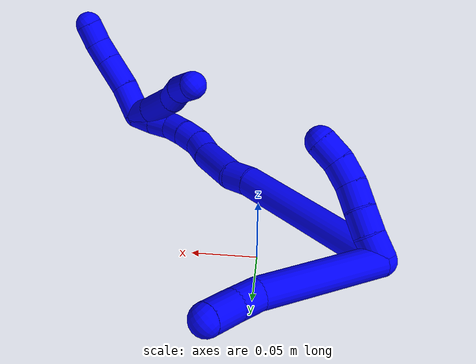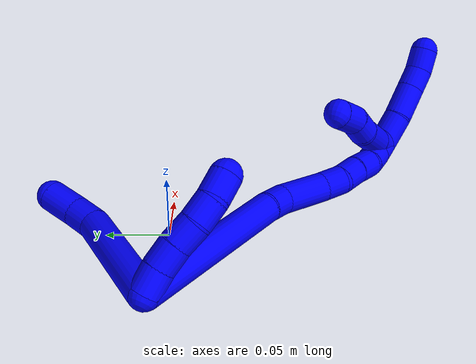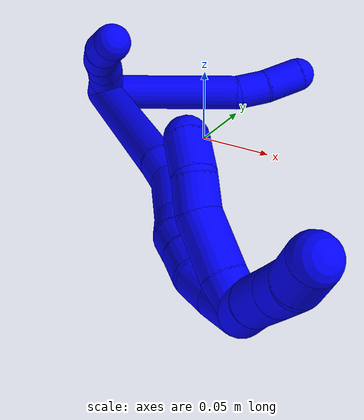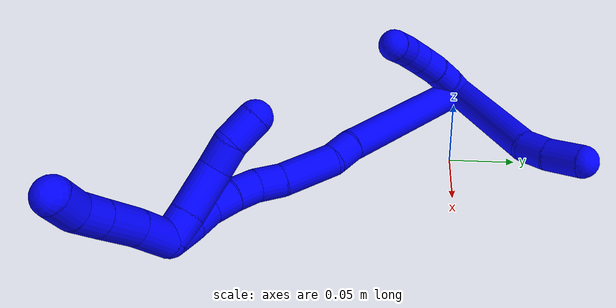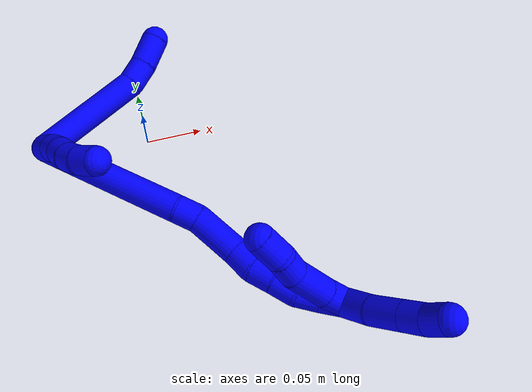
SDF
<sdf version="1.7">
 <world name="default">
  <model name="1">
   <static>0</static>
   <link name="1">
    <collision name="collision-cylinder-e_1_2_8">
     <pose>0.033146 0.030264 0.021653 -0.94977 0.727669 -0.386655</pose>
     <geometry><cylinder><radius>0.0125</radius><length>0.099669</length></cylinder></geometry>
     <surface>
      <friction><ode><mu>1.16</mu><mu2>1.16</mu2><slip1>0</slip1><slip2>0</slip2></ode></friction>
      <contact><ode><kp>1e+06</kp><kd>1</kd><max_vel>0</max_vel><min_depth>0.001</min_depth></ode></contact>
     </surface>
    </collision>
    <visual name="visual-cylinder-e_1_2_8">
     <pose>0.033146 0.030264 0.021653 -0.94977 0.727669 -0.386655</pose>
     <geometry><cylinder><radius>0.0125</radius><length>0.099669</length></cylinder></geometry>
     <material><ambient>0 0 1 1</ambient></material>
    </visual>
    <collision name="collision-cylinder-e_2_8_9">
     <pose>0.071846 0.069664 0.046165 -1.26752 0.52565 -0.390408</pose>
     <geometry><cylinder><radius>0.0125</radius><length>0.022133</length></cylinder></geometry>
     <surface>
      <friction><ode><mu>1.16</mu><mu2>1.16</mu2><slip1>0</slip1><slip2>0</slip2></ode></friction>
      <contact><ode><kp>1e+06</kp><kd>1</kd><max_vel>0</max_vel><min_depth>0.001</min_depth></ode></contact>
     </surface>
    </collision>
    <visual name="visual-cylinder-e_2_8_9">
     <pose>0.071846 0.069664 0.046165 -1.26752 0.52565 -0.390408</pose>
     <geometry><cylinder><radius>0.0125</radius><length>0.022133</length></cylinder></geometry>
     <material><ambient>0 0 1 1</ambient></material>
    </visual>
    <collision name="collision-cylinder-e_3_9_6">
     <pose>0.082684 0.091496 0.052132 -1.33065 0.384251 -0.302937</pose>
     <geometry><cylinder><radius>0.0125</radius><length>0.028198</length></cylinder></geometry>
     <surface>
      <friction><ode><mu>1.16</mu><mu2>1.16</mu2><slip1>0</slip1><slip2>0</slip2></ode></friction>
      <contact><ode><kp>1e+06</kp><kd>1</kd><max_vel>0</max_vel><min_depth>0.001</min_depth></ode></contact>
     </surface>
    </collision>
    <visual name="visual-cylinder-e_3_9_6">
     <pose>0.082684 0.091496 0.052132 -1.33065 0.384251 -0.302937</pose>
     <geometry><cylinder><radius>0.0125</radius><length>0.028198</length></cylinder></geometry>
     <material><ambient>0 0 1 1</ambient></material>
    </visual>
    <collision name="collision-cylinder-e_1_2_10">
     <pose>-0.00296 -0.000787 0.00952 0.082534 -0.300454 -0.0125</pose>
     <geometry><cylinder><radius>0.0125</radius><length>0.02</length></cylinder></geometry>
     <surface>
      <friction><ode><mu>1.16</mu><mu2>1.16</mu2><slip1>0</slip1><slip2>0</slip2></ode></friction>
      <contact><ode><kp>1e+06</kp><kd>1</kd><max_vel>0</max_vel><min_depth>0.001</min_depth></ode></contact>
     </surface>
    </collision>
    <visual name="visual-cylinder-e_1_2_10">
     <pose>-0.00296 -0.000787 0.00952 0.082534 -0.300454 -0.0125</pose>
     <geometry><cylinder><radius>0.0125</radius><length>0.02</length></cylinder></geometry>
     <material><ambient>0 0 1 1</ambient></material>
    </visual>
    <collision name="collision-cylinder-e_2_10_11">
     <pose>-0.009303 -0.003633 0.028222 0.22045 -0.345157 -0.038579</pose>
     <geometry><cylinder><radius>0.0125</radius><length>0.02</length></cylinder></geometry>
     <surface>
      <friction><ode><mu>1.16</mu><mu2>1.16</mu2><slip1>0</slip1><slip2>0</slip2></ode></friction>
      <contact><ode><kp>1e+06</kp><kd>1</kd><max_vel>0</max_vel><min_depth>0.001</min_depth></ode></contact>
     </surface>
    </collision>
    <visual name="visual-cylinder-e_2_10_11">
     <pose>-0.009303 -0.003633 0.028222 0.22045 -0.345157 -0.038579</pose>
     <geometry><cylinder><radius>0.0125</radius><length>0.02</length></cylinder></geometry>
     <material><ambient>0 0 1 1</ambient></material>
    </visual>
    <collision name="collision-cylinder-e_3_11_12">
     <pose>-0.01586 -0.008845 0.046347 0.339108 -0.323024 -0.055772</pose>
     <geometry><cylinder><radius>0.0125</radius><length>0.02</length></cylinder></geometry>
     <surface>
      <friction><ode><mu>1.16</mu><mu2>1.16</mu2><slip1>0</slip1><slip2>0</slip2></ode></friction>
      <contact><ode><kp>1e+06</kp><kd>1</kd><max_vel>0</max_vel><min_depth>0.001</min_depth></ode></contact>
     </surface>
    </collision>
    <visual name="visual-cylinder-e_3_11_12">
     <pose>-0.01586 -0.008845 0.046347 0.339108 -0.323024 -0.055772</pose>
     <geometry><cylinder><radius>0.0125</radius><length>0.02</length></cylinder></geometry>
     <material><ambient>0 0 1 1</ambient></material>
    </visual>
    <collision name="collision-cylinder-e_4_12_13">
     <pose>-0.020894 -0.014074 0.064894 0.212731 -0.18707 -0.020031</pose>
     <geometry><cylinder><radius>0.0125</radius><length>0.02</length></cylinder></geometry>
     <surface>
      <friction><ode><mu>1.16</mu><mu2>1.16</mu2><slip1>0</slip1><slip2>0</slip2></ode></friction>
      <contact><ode><kp>1e+06</kp><kd>1</kd><max_vel>0</max_vel><min_depth>0.001</min_depth></ode></contact>
     </surface>
    </collision>
    <visual name="visual-cylinder-e_4_12_13">
     <pose>-0.020894 -0.014074 0.064894 0.212731 -0.18707 -0.020031</pose>
     <geometry><cylinder><radius>0.0125</radius><length>0.02</length></cylinder></geometry>
     <material><ambient>0 0 1 1</ambient></material>
    </visual>
    <collision name="collision-cylinder-e_5_13_5">
     <pose>-0.022626 -0.016955 0.084464 0.080828 0.012779 0.000517</pose>
     <geometry><cylinder><radius>0.0125</radius><length>0.02</length></cylinder></geometry>
     <surface>
      <friction><ode><mu>1.16</mu><mu2>1.16</mu2><slip1>0</slip1><slip2>0</slip2></ode></friction>
      <contact><ode><kp>1e+06</kp><kd>1</kd><max_vel>0</max_vel><min_depth>0.001</min_depth></ode></contact>
     </surface>
    </collision>
    <visual name="visual-cylinder-e_5_13_5">
     <pose>-0.022626 -0.016955 0.084464 0.080828 0.012779 0.000517</pose>
     <geometry><cylinder><radius>0.0125</radius><length>0.02</length></cylinder></geometry>
     <material><ambient>0 0 1 1</ambient></material>
    </visual>
    <collision name="collision-cylinder-e_1_2_14">
     <pose>0.02678 -0.02902 0.054832 0.486771 0.407507 0.102521</pose>
     <geometry><cylinder><radius>0.0125</radius><length>0.135141</length></cylinder></geometry>
     <surface>
      <friction><ode><mu>1.16</mu><mu2>1.16</mu2><slip1>0</slip1><slip2>0</slip2></ode></friction>
      <contact><ode><kp>1e+06</kp><kd>1</kd><max_vel>0</max_vel><min_depth>0.001</min_depth></ode></contact>
     </surface>
    </collision>
    <visual name="visual-cylinder-e_1_2_14">
     <pose>0.02678 -0.02902 0.054832 0.486771 0.407507 0.102521</pose>
     <geometry><cylinder><radius>0.0125</radius><length>0.135141</length></cylinder></geometry>
     <material><ambient>0 0 1 1</ambient></material>
    </visual>
    <collision name="collision-cylinder-e_2_14_15">
     <pose>0.059156 -0.062677 0.116992 0.564221 0.572997 0.170363</pose>
     <geometry><cylinder><radius>0.0125</radius><length>0.020644</length></cylinder></geometry>
     <surface>
      <friction><ode><mu>1.16</mu><mu2>1.16</mu2><slip1>0</slip1><slip2>0</slip2></ode></friction>
      <contact><ode><kp>1e+06</kp><kd>1</kd><max_vel>0</max_vel><min_depth>0.001</min_depth></ode></contact>
     </surface>
    </collision>
    <visual name="visual-cylinder-e_2_14_15">
     <pose>0.059156 -0.062677 0.116992 0.564221 0.572997 0.170363</pose>
     <geometry><cylinder><radius>0.0125</radius><length>0.020644</length></cylinder></geometry>
     <material><ambient>0 0 1 1</ambient></material>
    </visual>
    <collision name="collision-cylinder-e_3_15_16">
     <pose>0.071607 -0.081455 0.138984 0.767231 0.324615 0.131989</pose>
     <geometry><cylinder><radius>0.0125</radius><length>0.042985</length></cylinder></geometry>
     <surface>
      <friction><ode><mu>1.16</mu><mu2>1.16</mu2><slip1>0</slip1><slip2>0</slip2></ode></friction>
      <contact><ode><kp>1e+06</kp><kd>1</kd><max_vel>0</max_vel><min_depth>0.001</min_depth></ode></contact>
     </surface>
    </collision>
    <visual name="visual-cylinder-e_3_15_16">
     <pose>0.071607 -0.081455 0.138984 0.767231 0.324615 0.131989</pose>
     <geometry><cylinder><radius>0.0125</radius><length>0.042985</length></cylinder></geometry>
     <material><ambient>0 0 1 1</ambient></material>
    </visual>
    <collision name="collision-cylinder-e_4_16_17">
     <pose>0.080065 -0.102558 0.1611 0.751473 0.155976 0.061634</pose>
     <geometry><cylinder><radius>0.0125</radius><length>0.020649</length></cylinder></geometry>
     <surface>
      <friction><ode><mu>1.16</mu><mu2>1.16</mu2><slip1>0</slip1><slip2>0</slip2></ode></friction>
      <contact><ode><kp>1e+06</kp><kd>1</kd><max_vel>0</max_vel><min_depth>0.001</min_depth></ode></contact>
     </surface>
    </collision>
    <visual name="visual-cylinder-e_4_16_17">
     <pose>0.080065 -0.102558 0.1611 0.751473 0.155976 0.061634</pose>
     <geometry><cylinder><radius>0.0125</radius><length>0.020649</length></cylinder></geometry>
     <material><ambient>0 0 1 1</ambient></material>
    </visual>
    <collision name="collision-cylinder-e_5_17_18">
     <pose>0.085135 -0.114209 0.176724 0.520809 0.352553 0.094854</pose>
     <geometry><cylinder><radius>0.0125</radius><length>0.020076</length></cylinder></geometry>
     <surface>
      <friction><ode><mu>1.16</mu><mu2>1.16</mu2><slip1>0</slip1><slip2>0</slip2></ode></friction>
      <contact><ode><kp>1e+06</kp><kd>1</kd><max_vel>0</max_vel><min_depth>0.001</min_depth></ode></contact>
     </surface>
    </collision>
    <visual name="visual-cylinder-e_5_17_18">
     <pose>0.085135 -0.114209 0.176724 0.520809 0.352553 0.094854</pose>
     <geometry><cylinder><radius>0.0125</radius><length>0.020076</length></cylinder></geometry>
     <material><ambient>0 0 1 1</ambient></material>
    </visual>
    <collision name="collision-cylinder-e_6_18_19">
     <pose>0.092916 -0.12405 0.192466 0.597672 0.440313 0.137661</pose>
     <geometry><cylinder><radius>0.0125</radius><length>0.020248</length></cylinder></geometry>
     <surface>
      <friction><ode><mu>1.16</mu><mu2>1.16</mu2><slip1>0</slip1><slip2>0</slip2></ode></friction>
      <contact><ode><kp>1e+06</kp><kd>1</kd><max_vel>0</max_vel><min_depth>0.001</min_depth></ode></contact>
     </surface>
    </collision>
    <visual name="visual-cylinder-e_6_18_19">
     <pose>0.092916 -0.12405 0.192466 0.597672 0.440313 0.137661</pose>
     <geometry><cylinder><radius>0.0125</radius><length>0.020248</length></cylinder></geometry>
     <material><ambient>0 0 1 1</ambient></material>
    </visual>
    <collision name="collision-cylinder-e_7_19_20">
     <pose>0.103006 -0.131737 0.207896 0.31179 0.610299 0.098933</pose>
     <geometry><cylinder><radius>0.0125</radius><length>0.020153</length></cylinder></geometry>
     <surface>
      <friction><ode><mu>1.16</mu><mu2>1.16</mu2><slip1>0</slip1><slip2>0</slip2></ode></friction>
      <contact><ode><kp>1e+06</kp><kd>1</kd><max_vel>0</max_vel><min_depth>0.001</min_depth></ode></contact>
     </surface>
    </collision>
    <visual name="visual-cylinder-e_7_19_20">
     <pose>0.103006 -0.131737 0.207896 0.31179 0.610299 0.098933</pose>
     <geometry><cylinder><radius>0.0125</radius><length>0.020153</length></cylinder></geometry>
     <material><ambient>0 0 1 1</ambient></material>
    </visual>
    <collision name="collision-cylinder-e_8_20_1">
     <pose>0.113739 -0.136287 0.224264 0.232769 0.515757 0.061652</pose>
     <geometry><cylinder><radius>0.0125</radius><length>0.020104</length></cylinder></geometry>
     <surface>
      <friction><ode><mu>1.16</mu><mu2>1.16</mu2><slip1>0</slip1><slip2>0</slip2></ode></friction>
      <contact><ode><kp>1e+06</kp><kd>1</kd><max_vel>0</max_vel><min_depth>0.001</min_depth></ode></contact>
     </surface>
    </collision>
    <visual name="visual-cylinder-e_8_20_1">
     <pose>0.113739 -0.136287 0.224264 0.232769 0.515757 0.061652</pose>
     <geometry><cylinder><radius>0.0125</radius><length>0.020104</length></cylinder></geometry>
     <material><ambient>0 0 1 1</ambient></material>
    </visual>
    <collision name="collision-cylinder-e_1_1_21">
     <pose>0.114868 -0.140026 0.247027 0.120237 -0.26055 -0.015772</pose>
     <geometry><cylinder><radius>0.0125</radius><length>0.02972</length></cylinder></geometry>
     <surface>
      <friction><ode><mu>1.16</mu><mu2>1.16</mu2><slip1>0</slip1><slip2>0</slip2></ode></friction>
      <contact><ode><kp>1e+06</kp><kd>1</kd><max_vel>0</max_vel><min_depth>0.001</min_depth></ode></contact>
     </surface>
    </collision>
    <visual name="visual-cylinder-e_1_1_21">
     <pose>0.114868 -0.140026 0.247027 0.120237 -0.26055 -0.015772</pose>
     <geometry><cylinder><radius>0.0125</radius><length>0.02972</length></cylinder></geometry>
     <material><ambient>0 0 1 1</ambient></material>
    </visual>
    <collision name="collision-cylinder-e_2_21_22">
     <pose>0.108812 -0.142399 0.276079 0.043921 -0.149337 -0.003286</pose>
     <geometry><cylinder><radius>0.0125</radius><length>0.029956</length></cylinder></geometry>
     <surface>
      <friction><ode><mu>1.16</mu><mu2>1.16</mu2><slip1>0</slip1><slip2>0</slip2></ode></friction>
      <contact><ode><kp>1e+06</kp><kd>1</kd><max_vel>0</max_vel><min_depth>0.001</min_depth></ode></contact>
     </surface>
    </collision>
    <visual name="visual-cylinder-e_2_21_22">
     <pose>0.108812 -0.142399 0.276079 0.043921 -0.149337 -0.003286</pose>
     <geometry><cylinder><radius>0.0125</radius><length>0.029956</length></cylinder></geometry>
     <material><ambient>0 0 1 1</ambient></material>
    </visual>
    <collision name="collision-cylinder-e_3_22_23">
     <pose>0.104968 -0.14348 0.30074 0.043682 -0.162185 -0.003551</pose>
     <geometry><cylinder><radius>0.0125</radius><length>0.02001</length></cylinder></geometry>
     <surface>
      <friction><ode><mu>1.16</mu><mu2>1.16</mu2><slip1>0</slip1><slip2>0</slip2></ode></friction>
      <contact><ode><kp>1e+06</kp><kd>1</kd><max_vel>0</max_vel><min_depth>0.001</min_depth></ode></contact>
     </surface>
    </collision>
    <visual name="visual-cylinder-e_3_22_23">
     <pose>0.104968 -0.14348 0.30074 0.043682 -0.162185 -0.003551</pose>
     <geometry><cylinder><radius>0.0125</radius><length>0.02001</length></cylinder></geometry>
     <material><ambient>0 0 1 1</ambient></material>
    </visual>
    <collision name="collision-cylinder-e_4_23_4">
     <pose>0.099964 -0.14249 0.320073 -0.149023 -0.340109 0.025635</pose>
     <geometry><cylinder><radius>0.0125</radius><length>0.020314</length></cylinder></geometry>
     <surface>
      <friction><ode><mu>1.16</mu><mu2>1.16</mu2><slip1>0</slip1><slip2>0</slip2></ode></friction>
      <contact><ode><kp>1e+06</kp><kd>1</kd><max_vel>0</max_vel><min_depth>0.001</min_depth></ode></contact>
     </surface>
    </collision>
    <visual name="visual-cylinder-e_4_23_4">
     <pose>0.099964 -0.14249 0.320073 -0.149023 -0.340109 0.025635</pose>
     <geometry><cylinder><radius>0.0125</radius><length>0.020314</length></cylinder></geometry>
     <material><ambient>0 0 1 1</ambient></material>
    </visual>
    <collision name="collision-cylinder-e_1_1_24">
     <pose>0.110498 -0.133565 0.228915 -2.25401 -0.930314 1.62495</pose>
     <geometry><cylinder><radius>0.0125</radius><length>0.020449</length></cylinder></geometry>
     <surface>
      <friction><ode><mu>1.16</mu><mu2>1.16</mu2><slip1>0</slip1><slip2>0</slip2></ode></friction>
      <contact><ode><kp>1e+06</kp><kd>1</kd><max_vel>0</max_vel><min_depth>0.001</min_depth></ode></contact>
     </surface>
    </collision>
    <visual name="visual-cylinder-e_1_1_24">
     <pose>0.110498 -0.133565 0.228915 -2.25401 -0.930314 1.62495</pose>
     <geometry><cylinder><radius>0.0125</radius><length>0.020449</length></cylinder></geometry>
     <material><ambient>0 0 1 1</ambient></material>
    </visual>
    <collision name="collision-cylinder-e_2_24_25">
     <pose>0.087867 -0.119971 0.219846 -2.10282 -0.952091 1.4676</pose>
     <geometry><cylinder><radius>0.0125</radius><length>0.035434</length></cylinder></geometry>
     <surface>
      <friction><ode><mu>1.16</mu><mu2>1.16</mu2><slip1>0</slip1><slip2>0</slip2></ode></friction>
      <contact><ode><kp>1e+06</kp><kd>1</kd><max_vel>0</max_vel><min_depth>0.001</min_depth></ode></contact>
     </surface>
    </collision>
    <visual name="visual-cylinder-e_2_24_25">
     <pose>0.087867 -0.119971 0.219846 -2.10282 -0.952091 1.4676</pose>
     <geometry><cylinder><radius>0.0125</radius><length>0.035434</length></cylinder></geometry>
     <material><ambient>0 0 1 1</ambient></material>
    </visual>
    <collision name="collision-cylinder-e_3_25_26">
     <pose>0.065689 -0.104534 0.214201 -1.63629 -0.865373 0.916325</pose>
     <geometry><cylinder><radius>0.0125</radius><length>0.020347</length></cylinder></geometry>
     <surface>
      <friction><ode><mu>1.16</mu><mu2>1.16</mu2><slip1>0</slip1><slip2>0</slip2></ode></friction>
      <contact><ode><kp>1e+06</kp><kd>1</kd><max_vel>0</max_vel><min_depth>0.001</min_depth></ode></contact>
     </surface>
    </collision>
    <visual name="visual-cylinder-e_3_25_26">
     <pose>0.065689 -0.104534 0.214201 -1.63629 -0.865373 0.916325</pose>
     <geometry><cylinder><radius>0.0125</radius><length>0.020347</length></cylinder></geometry>
     <material><ambient>0 0 1 1</ambient></material>
    </visual>
    <collision name="collision-cylinder-e_4_26_3">
     <pose>0.050083 -0.090036 0.209672 -2.04846 -0.722687 1.11173</pose>
     <geometry><cylinder><radius>0.0125</radius><length>0.02377</length></cylinder></geometry>
     <surface>
      <friction><ode><mu>1.16</mu><mu2>1.16</mu2><slip1>0</slip1><slip2>0</slip2></ode></friction>
      <contact><ode><kp>1e+06</kp><kd>1</kd><max_vel>0</max_vel><min_depth>0.001</min_depth></ode></contact>
     </surface>
    </collision>
    <visual name="visual-cylinder-e_4_26_3">
     <pose>0.050083 -0.090036 0.209672 -2.04846 -0.722687 1.11173</pose>
     <geometry><cylinder><radius>0.0125</radius><length>0.02377</length></cylinder></geometry>
     <material><ambient>0 0 1 1</ambient></material>
    </visual>
    <collision name="collision-sphere-3">
     <pose>0.042222 -0.082119 0.205574 0 -0 0</pose>
     <geometry><sphere><radius>0.0125</radius></sphere></geometry>
     <surface>
      <friction><ode><mu>1.16</mu><mu2>1.16</mu2><slip1>0</slip1><slip2>0</slip2></ode></friction>
      <contact><ode><kp>1e+06</kp><kd>1</kd><max_vel>0</max_vel><min_depth>0.001</min_depth></ode></contact>
     </surface>
    </collision>
    <visual name="visual-sphere-3">
     <pose>0.042222 -0.082119 0.205574 0 -0 0</pose>
     <geometry><sphere><radius>0.0125</radius></sphere></geometry>
     <material><ambient>0 0 1 1</ambient></material>
    </visual>
    <collision name="collision-sphere-26">
     <pose>0.057943 -0.097952 0.21377 0 -0 0</pose>
     <geometry><sphere><radius>0.0125</radius></sphere></geometry>
     <surface>
      <friction><ode><mu>1.16</mu><mu2>1.16</mu2><slip1>0</slip1><slip2>0</slip2></ode></friction>
      <contact><ode><kp>1e+06</kp><kd>1</kd><max_vel>0</max_vel><min_depth>0.001</min_depth></ode></contact>
     </surface>
    </collision>
    <visual name="visual-sphere-26">
     <pose>0.057943 -0.097952 0.21377 0 -0 0</pose>
     <geometry><sphere><radius>0.0125</radius></sphere></geometry>
     <material><ambient>0 0 1 1</ambient></material>
    </visual>
    <collision name="collision-sphere-25">
     <pose>0.073434 -0.111116 0.214633 0 -0 0</pose>
     <geometry><sphere><radius>0.0125</radius></sphere></geometry>
     <surface>
      <friction><ode><mu>1.16</mu><mu2>1.16</mu2><slip1>0</slip1><slip2>0</slip2></ode></friction>
      <contact><ode><kp>1e+06</kp><kd>1</kd><max_vel>0</max_vel><min_depth>0.001</min_depth></ode></contact>
     </surface>
    </collision>
    <visual name="visual-sphere-25">
     <pose>0.073434 -0.111116 0.214633 0 -0 0</pose>
     <geometry><sphere><radius>0.0125</radius></sphere></geometry>
     <material><ambient>0 0 1 1</ambient></material>
    </visual>
    <collision name="collision-sphere-24">
     <pose>0.1023 -0.128827 0.225058 0 -0 0</pose>
     <geometry><sphere><radius>0.0125</radius></sphere></geometry>
     <surface>
      <friction><ode><mu>1.16</mu><mu2>1.16</mu2><slip1>0</slip1><slip2>0</slip2></ode></friction>
      <contact><ode><kp>1e+06</kp><kd>1</kd><max_vel>0</max_vel><min_depth>0.001</min_depth></ode></contact>
     </surface>
    </collision>
    <visual name="visual-sphere-24">
     <pose>0.1023 -0.128827 0.225058 0 -0 0</pose>
     <geometry><sphere><radius>0.0125</radius></sphere></geometry>
     <material><ambient>0 0 1 1</ambient></material>
    </visual>
    <collision name="collision-sphere-4">
     <pose>0.096575 -0.141068 0.329543 0 -0 0</pose>
     <geometry><sphere><radius>0.0125</radius></sphere></geometry>
     <surface>
      <friction><ode><mu>1.16</mu><mu2>1.16</mu2><slip1>0</slip1><slip2>0</slip2></ode></friction>
      <contact><ode><kp>1e+06</kp><kd>1</kd><max_vel>0</max_vel><min_depth>0.001</min_depth></ode></contact>
     </surface>
    </collision>
    <visual name="visual-sphere-4">
     <pose>0.096575 -0.141068 0.329543 0 -0 0</pose>
     <geometry><sphere><radius>0.0125</radius></sphere></geometry>
     <material><ambient>0 0 1 1</ambient></material>
    </visual>
    <collision name="collision-sphere-23">
     <pose>0.103352 -0.143911 0.310604 0 -0 0</pose>
     <geometry><sphere><radius>0.0125</radius></sphere></geometry>
     <surface>
      <friction><ode><mu>1.16</mu><mu2>1.16</mu2><slip1>0</slip1><slip2>0</slip2></ode></friction>
      <contact><ode><kp>1e+06</kp><kd>1</kd><max_vel>0</max_vel><min_depth>0.001</min_depth></ode></contact>
     </surface>
    </collision>
    <visual name="visual-sphere-23">
     <pose>0.103352 -0.143911 0.310604 0 -0 0</pose>
     <geometry><sphere><radius>0.0125</radius></sphere></geometry>
     <material><ambient>0 0 1 1</ambient></material>
    </visual>
    <collision name="collision-sphere-22">
     <pose>0.106583 -0.143049 0.290876 0 -0 0</pose>
     <geometry><sphere><radius>0.0125</radius></sphere></geometry>
     <surface>
      <friction><ode><mu>1.16</mu><mu2>1.16</mu2><slip1>0</slip1><slip2>0</slip2></ode></friction>
      <contact><ode><kp>1e+06</kp><kd>1</kd><max_vel>0</max_vel><min_depth>0.001</min_depth></ode></contact>
     </surface>
    </collision>
    <visual name="visual-sphere-22">
     <pose>0.106583 -0.143049 0.290876 0 -0 0</pose>
     <geometry><sphere><radius>0.0125</radius></sphere></geometry>
     <material><ambient>0 0 1 1</ambient></material>
    </visual>
    <collision name="collision-sphere-21">
     <pose>0.11104 -0.141748 0.261282 0 -0 0</pose>
     <geometry><sphere><radius>0.0125</radius></sphere></geometry>
     <surface>
      <friction><ode><mu>1.16</mu><mu2>1.16</mu2><slip1>0</slip1><slip2>0</slip2></ode></friction>
      <contact><ode><kp>1e+06</kp><kd>1</kd><max_vel>0</max_vel><min_depth>0.001</min_depth></ode></contact>
     </surface>
    </collision>
    <visual name="visual-sphere-21">
     <pose>0.11104 -0.141748 0.261282 0 -0 0</pose>
     <geometry><sphere><radius>0.0125</radius></sphere></geometry>
     <material><ambient>0 0 1 1</ambient></material>
    </visual>
    <collision name="collision-sphere-1">
     <pose>0.118696 -0.138304 0.232772 0 -0 0</pose>
     <geometry><sphere><radius>0.0125</radius></sphere></geometry>
     <surface>
      <friction><ode><mu>1.16</mu><mu2>1.16</mu2><slip1>0</slip1><slip2>0</slip2></ode></friction>
      <contact><ode><kp>1e+06</kp><kd>1</kd><max_vel>0</max_vel><min_depth>0.001</min_depth></ode></contact>
     </surface>
    </collision>
    <visual name="visual-sphere-1">
     <pose>0.118696 -0.138304 0.232772 0 -0 0</pose>
     <geometry><sphere><radius>0.0125</radius></sphere></geometry>
     <material><ambient>0 0 1 1</ambient></material>
    </visual>
    <collision name="collision-sphere-11">
     <pose>-0.012686 -0.00569 0.037404 0 -0 0</pose>
     <geometry><sphere><radius>0.0125</radius></sphere></geometry>
     <surface>
      <friction><ode><mu>1.16</mu><mu2>1.16</mu2><slip1>0</slip1><slip2>0</slip2></ode></friction>
      <contact><ode><kp>1e+06</kp><kd>1</kd><max_vel>0</max_vel><min_depth>0.001</min_depth></ode></contact>
     </surface>
    </collision>
    <visual name="visual-sphere-11">
     <pose>-0.012686 -0.00569 0.037404 0 -0 0</pose>
     <geometry><sphere><radius>0.0125</radius></sphere></geometry>
     <material><ambient>0 0 1 1</ambient></material>
    </visual>
    <collision name="collision-sphere-10">
     <pose>-0.005919 -0.001575 0.019039 0 -0 0</pose>
     <geometry><sphere><radius>0.0125</radius></sphere></geometry>
     <surface>
      <friction><ode><mu>1.16</mu><mu2>1.16</mu2><slip1>0</slip1><slip2>0</slip2></ode></friction>
      <contact><ode><kp>1e+06</kp><kd>1</kd><max_vel>0</max_vel><min_depth>0.001</min_depth></ode></contact>
     </surface>
    </collision>
    <visual name="visual-sphere-10">
     <pose>-0.005919 -0.001575 0.019039 0 -0 0</pose>
     <geometry><sphere><radius>0.0125</radius></sphere></geometry>
     <material><ambient>0 0 1 1</ambient></material>
    </visual>
    <collision name="collision-sphere-6">
     <pose>0.087969 0.104192 0.055241 0 -0 0</pose>
     <geometry><sphere><radius>0.0125</radius></sphere></geometry>
     <surface>
      <friction><ode><mu>1.16</mu><mu2>1.16</mu2><slip1>0</slip1><slip2>0</slip2></ode></friction>
      <contact><ode><kp>1e+06</kp><kd>1</kd><max_vel>0</max_vel><min_depth>0.001</min_depth></ode></contact>
     </surface>
    </collision>
    <visual name="visual-sphere-6">
     <pose>0.087969 0.104192 0.055241 0 -0 0</pose>
     <geometry><sphere><radius>0.0125</radius></sphere></geometry>
     <material><ambient>0 0 1 1</ambient></material>
    </visual>
    <collision name="collision-sphere-9">
     <pose>0.077398 0.0788 0.049023 0 -0 0</pose>
     <geometry><sphere><radius>0.0125</radius></sphere></geometry>
     <surface>
      <friction><ode><mu>1.16</mu><mu2>1.16</mu2><slip1>0</slip1><slip2>0</slip2></ode></friction>
      <contact><ode><kp>1e+06</kp><kd>1</kd><max_vel>0</max_vel><min_depth>0.001</min_depth></ode></contact>
     </surface>
    </collision>
    <visual name="visual-sphere-9">
     <pose>0.077398 0.0788 0.049023 0 -0 0</pose>
     <geometry><sphere><radius>0.0125</radius></sphere></geometry>
     <material><ambient>0 0 1 1</ambient></material>
    </visual>
    <collision name="collision-sphere-2">
     <geometry><sphere><radius>0.0125</radius></sphere></geometry>
     <surface>
      <friction><ode><mu>1.16</mu><mu2>1.16</mu2><slip1>0</slip1><slip2>0</slip2></ode></friction>
      <contact><ode><kp>1e+06</kp><kd>1</kd><max_vel>0</max_vel><min_depth>0.001</min_depth></ode></contact>
     </surface>
    </collision>
    <visual name="visual-sphere-2">
     <geometry><sphere><radius>0.0125</radius></sphere></geometry>
     <material><ambient>0 0 1 1</ambient></material>
    </visual>
    <collision name="collision-sphere-19">
     <pose>0.097231 -0.129203 0.200037 0 -0 0</pose>
     <geometry><sphere><radius>0.0125</radius></sphere></geometry>
     <surface>
      <friction><ode><mu>1.16</mu><mu2>1.16</mu2><slip1>0</slip1><slip2>0</slip2></ode></friction>
      <contact><ode><kp>1e+06</kp><kd>1</kd><max_vel>0</max_vel><min_depth>0.001</min_depth></ode></contact>
     </surface>
    </collision>
    <visual name="visual-sphere-19">
     <pose>0.097231 -0.129203 0.200037 0 -0 0</pose>
     <geometry><sphere><radius>0.0125</radius></sphere></geometry>
     <material><ambient>0 0 1 1</ambient></material>
    </visual>
    <collision name="collision-sphere-8">
     <pose>0.066293 0.060529 0.043306 0 -0 0</pose>
     <geometry><sphere><radius>0.0125</radius></sphere></geometry>
     <surface>
      <friction><ode><mu>1.16</mu><mu2>1.16</mu2><slip1>0</slip1><slip2>0</slip2></ode></friction>
      <contact><ode><kp>1e+06</kp><kd>1</kd><max_vel>0</max_vel><min_depth>0.001</min_depth></ode></contact>
     </surface>
    </collision>
    <visual name="visual-sphere-8">
     <pose>0.066293 0.060529 0.043306 0 -0 0</pose>
     <geometry><sphere><radius>0.0125</radius></sphere></geometry>
     <material><ambient>0 0 1 1</ambient></material>
    </visual>
    <collision name="collision-sphere-12">
     <pose>-0.019035 -0.011999 0.05529 0 -0 0</pose>
     <geometry><sphere><radius>0.0125</radius></sphere></geometry>
     <surface>
      <friction><ode><mu>1.16</mu><mu2>1.16</mu2><slip1>0</slip1><slip2>0</slip2></ode></friction>
      <contact><ode><kp>1e+06</kp><kd>1</kd><max_vel>0</max_vel><min_depth>0.001</min_depth></ode></contact>
     </surface>
    </collision>
    <visual name="visual-sphere-12">
     <pose>-0.019035 -0.011999 0.05529 0 -0 0</pose>
     <geometry><sphere><radius>0.0125</radius></sphere></geometry>
     <material><ambient>0 0 1 1</ambient></material>
    </visual>
    <collision name="collision-sphere-13">
     <pose>-0.022754 -0.016148 0.074498 0 -0 0</pose>
     <geometry><sphere><radius>0.0125</radius></sphere></geometry>
     <surface>
      <friction><ode><mu>1.16</mu><mu2>1.16</mu2><slip1>0</slip1><slip2>0</slip2></ode></friction>
      <contact><ode><kp>1e+06</kp><kd>1</kd><max_vel>0</max_vel><min_depth>0.001</min_depth></ode></contact>
     </surface>
    </collision>
    <visual name="visual-sphere-13">
     <pose>-0.022754 -0.016148 0.074498 0 -0 0</pose>
     <geometry><sphere><radius>0.0125</radius></sphere></geometry>
     <material><ambient>0 0 1 1</ambient></material>
    </visual>
    <collision name="collision-sphere-5">
     <pose>-0.022499 -0.017763 0.094431 0 -0 0</pose>
     <geometry><sphere><radius>0.0125</radius></sphere></geometry>
     <surface>
      <friction><ode><mu>1.16</mu><mu2>1.16</mu2><slip1>0</slip1><slip2>0</slip2></ode></friction>
      <contact><ode><kp>1e+06</kp><kd>1</kd><max_vel>0</max_vel><min_depth>0.001</min_depth></ode></contact>
     </surface>
    </collision>
    <visual name="visual-sphere-5">
     <pose>-0.022499 -0.017763 0.094431 0 -0 0</pose>
     <geometry><sphere><radius>0.0125</radius></sphere></geometry>
     <material><ambient>0 0 1 1</ambient></material>
    </visual>
    <collision name="collision-sphere-14">
     <pose>0.053559 -0.058039 0.109663 0 -0 0</pose>
     <geometry><sphere><radius>0.0125</radius></sphere></geometry>
     <surface>
      <friction><ode><mu>1.16</mu><mu2>1.16</mu2><slip1>0</slip1><slip2>0</slip2></ode></friction>
      <contact><ode><kp>1e+06</kp><kd>1</kd><max_vel>0</max_vel><min_depth>0.001</min_depth></ode></contact>
     </surface>
    </collision>
    <visual name="visual-sphere-14">
     <pose>0.053559 -0.058039 0.109663 0 -0 0</pose>
     <geometry><sphere><radius>0.0125</radius></sphere></geometry>
     <material><ambient>0 0 1 1</ambient></material>
    </visual>
    <collision name="collision-sphere-15">
     <pose>0.064752 -0.067315 0.124321 0 -0 0</pose>
     <geometry><sphere><radius>0.0125</radius></sphere></geometry>
     <surface>
      <friction><ode><mu>1.16</mu><mu2>1.16</mu2><slip1>0</slip1><slip2>0</slip2></ode></friction>
      <contact><ode><kp>1e+06</kp><kd>1</kd><max_vel>0</max_vel><min_depth>0.001</min_depth></ode></contact>
     </surface>
    </collision>
    <visual name="visual-sphere-15">
     <pose>0.064752 -0.067315 0.124321 0 -0 0</pose>
     <geometry><sphere><radius>0.0125</radius></sphere></geometry>
     <material><ambient>0 0 1 1</ambient></material>
    </visual>
    <collision name="collision-sphere-16">
     <pose>0.078462 -0.095595 0.153648 0 -0 0</pose>
     <geometry><sphere><radius>0.0125</radius></sphere></geometry>
     <surface>
      <friction><ode><mu>1.16</mu><mu2>1.16</mu2><slip1>0</slip1><slip2>0</slip2></ode></friction>
      <contact><ode><kp>1e+06</kp><kd>1</kd><max_vel>0</max_vel><min_depth>0.001</min_depth></ode></contact>
     </surface>
    </collision>
    <visual name="visual-sphere-16">
     <pose>0.078462 -0.095595 0.153648 0 -0 0</pose>
     <geometry><sphere><radius>0.0125</radius></sphere></geometry>
     <material><ambient>0 0 1 1</ambient></material>
    </visual>
    <collision name="collision-sphere-17">
     <pose>0.081669 -0.109521 0.168552 0 -0 0</pose>
     <geometry><sphere><radius>0.0125</radius></sphere></geometry>
     <surface>
      <friction><ode><mu>1.16</mu><mu2>1.16</mu2><slip1>0</slip1><slip2>0</slip2></ode></friction>
      <contact><ode><kp>1e+06</kp><kd>1</kd><max_vel>0</max_vel><min_depth>0.001</min_depth></ode></contact>
     </surface>
    </collision>
    <visual name="visual-sphere-17">
     <pose>0.081669 -0.109521 0.168552 0 -0 0</pose>
     <geometry><sphere><radius>0.0125</radius></sphere></geometry>
     <material><ambient>0 0 1 1</ambient></material>
    </visual>
    <collision name="collision-sphere-18">
     <pose>0.088601 -0.118896 0.184896 0 -0 0</pose>
     <geometry><sphere><radius>0.0125</radius></sphere></geometry>
     <surface>
      <friction><ode><mu>1.16</mu><mu2>1.16</mu2><slip1>0</slip1><slip2>0</slip2></ode></friction>
      <contact><ode><kp>1e+06</kp><kd>1</kd><max_vel>0</max_vel><min_depth>0.001</min_depth></ode></contact>
     </surface>
    </collision>
    <visual name="visual-sphere-18">
     <pose>0.088601 -0.118896 0.184896 0 -0 0</pose>
     <geometry><sphere><radius>0.0125</radius></sphere></geometry>
     <material><ambient>0 0 1 1</ambient></material>
    </visual>
    <collision name="collision-sphere-20">
     <pose>0.108781 -0.13427 0.215756 0 -0 0</pose>
     <geometry><sphere><radius>0.0125</radius></sphere></geometry>
     <surface>
      <friction><ode><mu>1.16</mu><mu2>1.16</mu2><slip1>0</slip1><slip2>0</slip2></ode></friction>
      <contact><ode><kp>1e+06</kp><kd>1</kd><max_vel>0</max_vel><min_depth>0.001</min_depth></ode></contact>
     </surface>
    </collision>
    <visual name="visual-sphere-20">
     <pose>0.108781 -0.13427 0.215756 0 -0 0</pose>
     <geometry><sphere><radius>0.0125</radius></sphere></geometry>
     <material><ambient>0 0 1 1</ambient></material>
    </visual>
    <inertial>
     <pose>0.056029 -0.053632 0.126044 0 -0 0</pose>
     <mass>0.75</mass>
     <inertia>
      <ixx>0.000299</ixx>
      <ixy>0</ixy>
      <ixz>0</ixz>
      <iyy>0.000294</iyy>
      <iyz>0</iyz>
      <izz>-6.3e-05</izz>
     </inertia>
    </inertial>
   </link>
   <pose>-0.091427 0.009534 0.01227 0.555652 0.79456 0.212921</pose>
  </model>
 </world>
</sdf>
